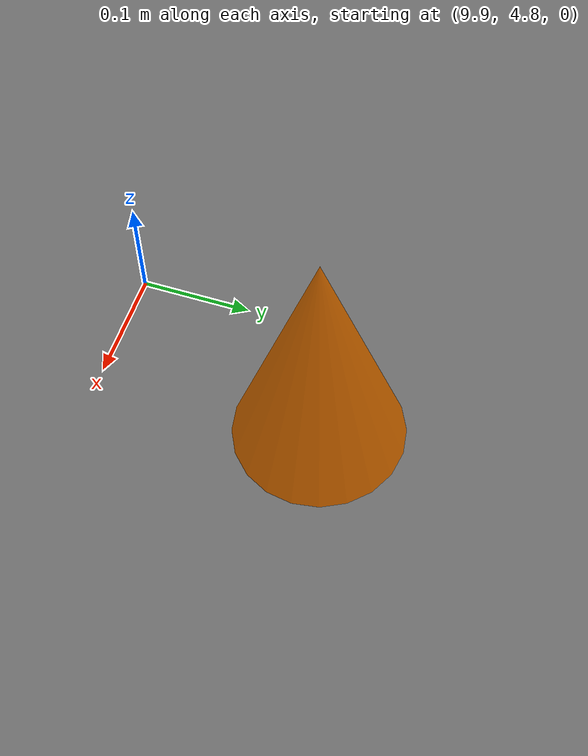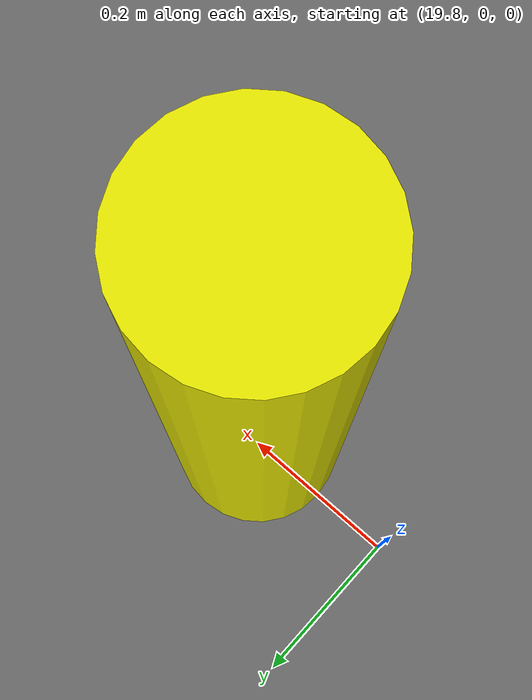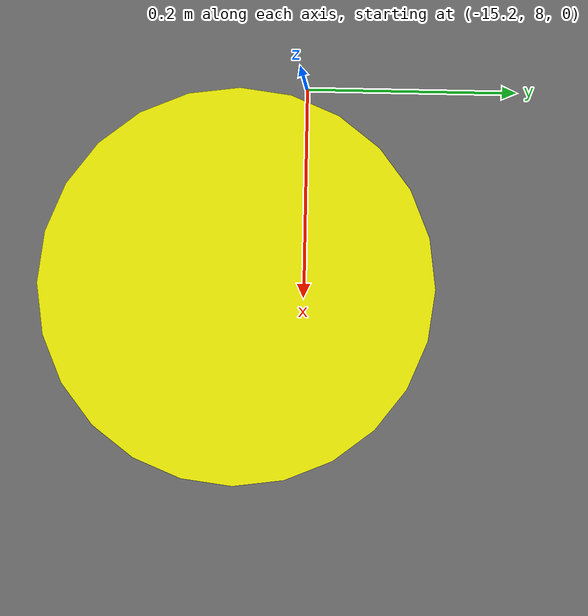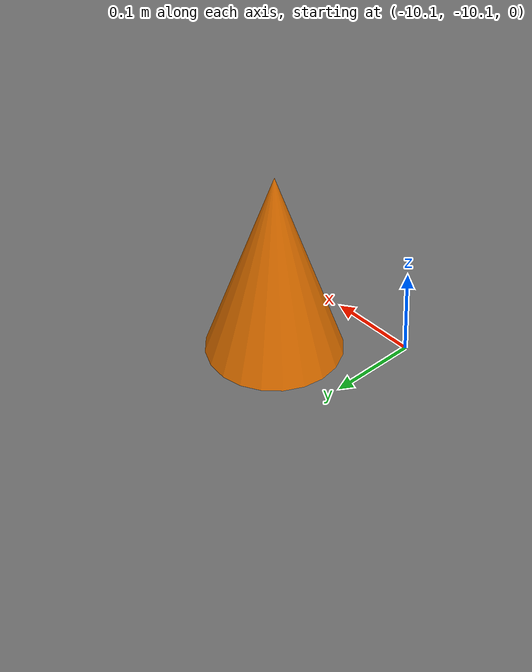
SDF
<?xml version="1.0" ?>
<sdf version="1.8">
  <world name="parking_lot">

    <!-- Physics -->
    <physics name="default_physics" type="ode">
      <max_step_size>0.001</max_step_size>
      <real_time_factor>1.0</real_time_factor>
      <real_time_update_rate>1000</real_time_update_rate>
    </physics>

    <!-- Sun -->
    <light type="directional" name="sun">
      <cast_shadows>true</cast_shadows>
      <pose>0 0 50 0 0 0</pose>
      <diffuse>0.9 0.9 0.9 1</diffuse>
      <specular>0.3 0.3 0.3 1</specular>
      <attenuation>
        <range>1000</range>
        <constant>0.9</constant>
        <linear>0.01</linear>
        <quadratic>0.001</quadratic>
      </attenuation>
      <direction>-0.5 0.1 -0.9</direction>
    </light>

    <!-- Ground plane (100m x 100m asphalt) -->
    <model name="ground_plane">
      <static>true</static>
      <link name="link">
        <collision name="collision">
          <geometry>
            <plane>
              <normal>0 0 1</normal>
              <size>100 100</size>
            </plane>
          </geometry>
          <surface>
            <friction>
              <ode>
                <mu>0.8</mu>
                <mu2>0.8</mu2>
              </ode>
            </friction>
          </surface>
        </collision>
        <visual name="visual">
          <geometry>
            <plane>
              <normal>0 0 1</normal>
              <size>100 100</size>
            </plane>
          </geometry>
          <material>
            <ambient>0.3 0.3 0.3 1</ambient>
            <diffuse>0.4 0.4 0.4 1</diffuse>
            <specular>0.1 0.1 0.1 1</specular>
          </material>
        </visual>
      </link>
    </model>

    <!-- Traffic cone 1 -->
    <model name="cone_1">
      <static>true</static>
      <pose>10 5 0 0 0 0</pose>
      <link name="link">
        <collision name="collision">
          <geometry>
            <cone>
              <radius>0.15</radius>
              <length>0.45</length>
            </cone>
          </geometry>
        </collision>
        <visual name="visual">
          <geometry>
            <cone>
              <radius>0.15</radius>
              <length>0.45</length>
            </cone>
          </geometry>
          <material>
            <ambient>1.0 0.4 0.0 1</ambient>
            <diffuse>1.0 0.5 0.0 1</diffuse>
          </material>
        </visual>
      </link>
    </model>

    <!-- Traffic cone 2 -->
    <model name="cone_2">
      <static>true</static>
      <pose>10 -5 0 0 0 0</pose>
      <link name="link">
        <collision name="collision">
          <geometry>
            <cone>
              <radius>0.15</radius>
              <length>0.45</length>
            </cone>
          </geometry>
        </collision>
        <visual name="visual">
          <geometry>
            <cone>
              <radius>0.15</radius>
              <length>0.45</length>
            </cone>
          </geometry>
          <material>
            <ambient>1.0 0.4 0.0 1</ambient>
            <diffuse>1.0 0.5 0.0 1</diffuse>
          </material>
        </visual>
      </link>
    </model>

    <!-- Bollard 1 -->
    <model name="bollard_1">
      <static>true</static>
      <pose>20 0 0.5 0 0 0</pose>
      <link name="link">
        <collision name="collision">
          <geometry>
            <cylinder>
              <radius>0.1</radius>
              <length>1.0</length>
            </cylinder>
          </geometry>
        </collision>
        <visual name="visual">
          <geometry>
            <cylinder>
              <radius>0.1</radius>
              <length>1.0</length>
            </cylinder>
          </geometry>
          <material>
            <ambient>0.8 0.8 0.0 1</ambient>
            <diffuse>0.9 0.9 0.0 1</diffuse>
          </material>
        </visual>
      </link>
    </model>

    <!-- Bollard 2 -->
    <model name="bollard_2">
      <static>true</static>
      <pose>-15 8 0.5 0 0 0</pose>
      <link name="link">
        <collision name="collision">
          <geometry>
            <cylinder>
              <radius>0.1</radius>
              <length>1.0</length>
            </cylinder>
          </geometry>
        </collision>
        <visual name="visual">
          <geometry>
            <cylinder>
              <radius>0.1</radius>
              <length>1.0</length>
            </cylinder>
          </geometry>
          <material>
            <ambient>0.8 0.8 0.0 1</ambient>
            <diffuse>0.9 0.9 0.0 1</diffuse>
          </material>
        </visual>
      </link>
    </model>

    <!-- Traffic cone 3 -->
    <model name="cone_3">
      <static>true</static>
      <pose>-10 -10 0 0 0 0</pose>
      <link name="link">
        <collision name="collision">
          <geometry>
            <cone>
              <radius>0.15</radius>
              <length>0.45</length>
            </cone>
          </geometry>
        </collision>
        <visual name="visual">
          <geometry>
            <cone>
              <radius>0.15</radius>
              <length>0.45</length>
            </cone>
          </geometry>
          <material>
            <ambient>1.0 0.4 0.0 1</ambient>
            <diffuse>1.0 0.5 0.0 1</diffuse>
          </material>
        </visual>
      </link>
    </model>

  </world>
</sdf>
